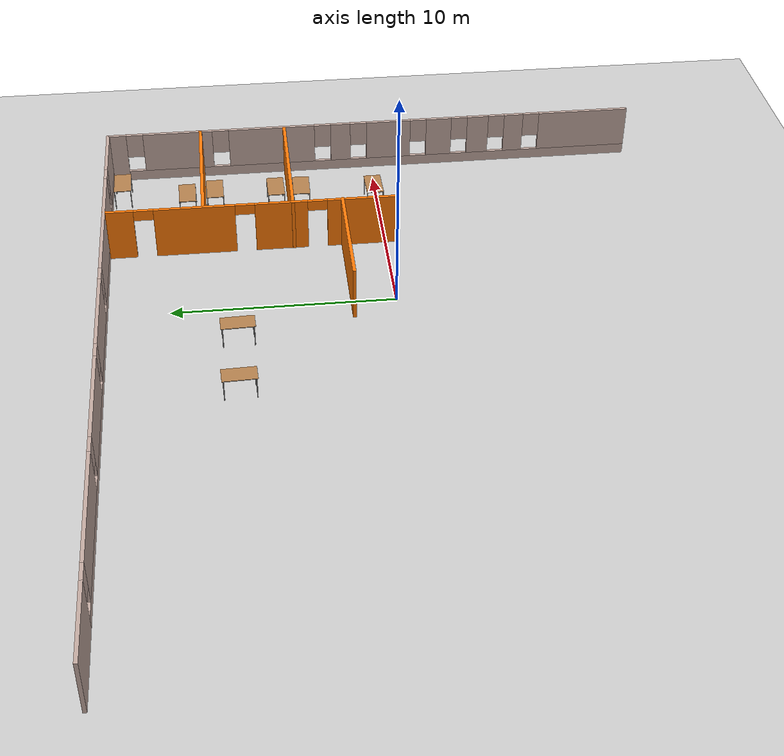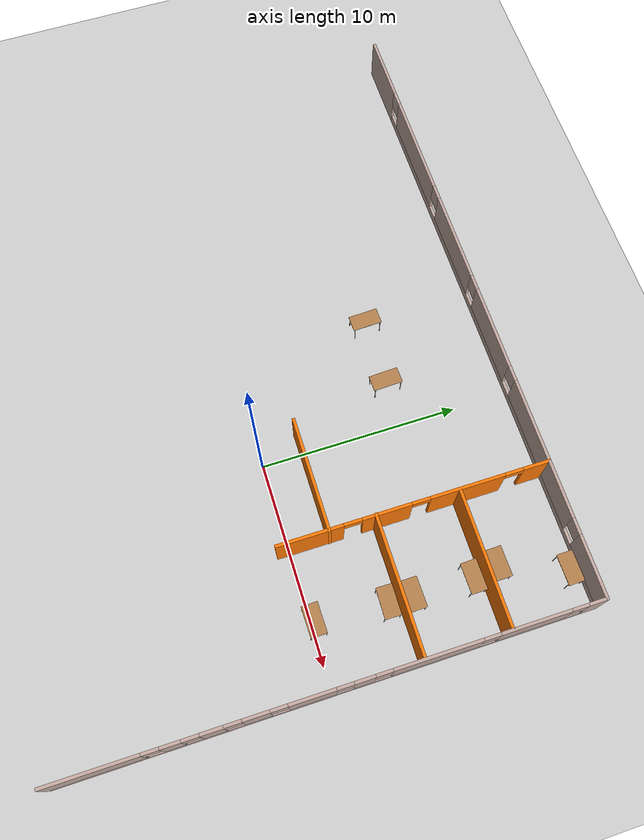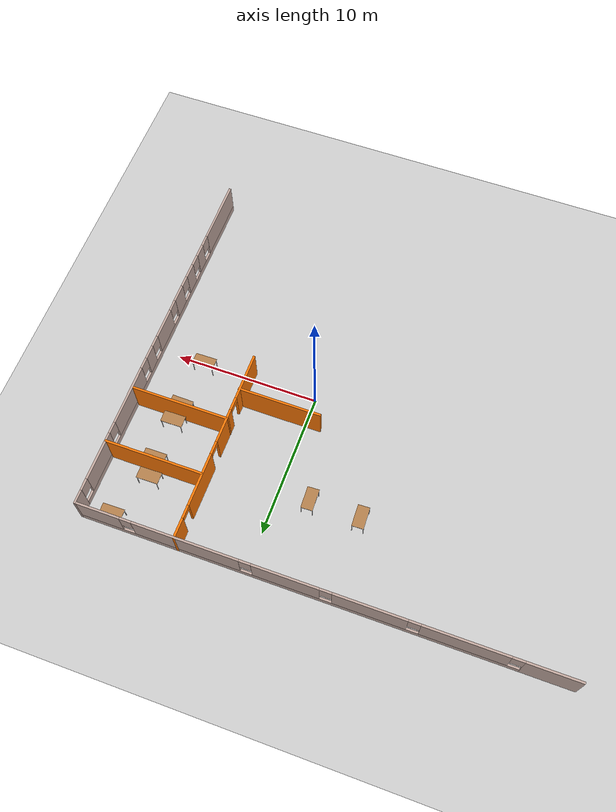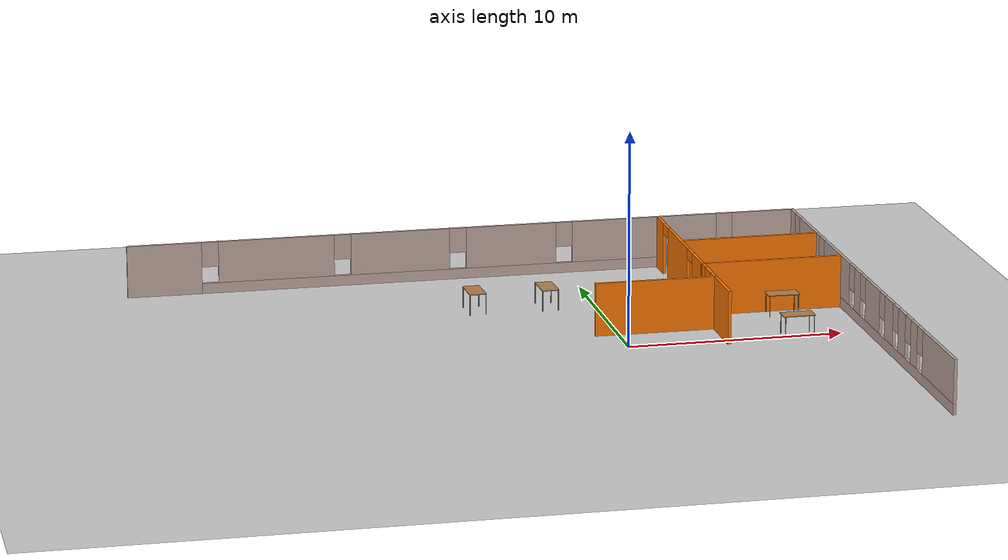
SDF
<sdf version="1.6">
 <world name="default">
  <model name="ground_plane">
   <static>1</static>
   <link name="link">
    <collision name="collision">
     <geometry><plane><normal>0 0 1</normal><size>100 100</size></plane></geometry>
     <surface><friction><ode><mu>100</mu><mu2>50</mu2></ode></friction></surface>
    </collision>
    <visual name="visual">
     <cast_shadows>0</cast_shadows>
     <geometry><plane><normal>0 0 1</normal><size>100 100</size></plane></geometry>
     <material>
      <script><uri>file://media/materials/scripts/gazebo.material</uri><name>Gazebo/Grey</name></script>
     </material>
    </visual>
   </link>
  </model>
  <model name="Building">
   <pose>-10.6691 -0.0294 0 0 -0 0</pose>
   <link name="Wall_158">
    <pose>5.73934 12.8407 0 0 -0 0</pose>
    <visual name="Wall_158_Visual_0">
     <pose>-14.4808 0 1.25 0 -0 0</pose>
     <geometry><box><size>3.53833 0.15 2.5</size></box></geometry>
     <material>
      <script><uri>file://media/materials/scripts/gazebo.material</uri><name>Gazebo/Grey</name></script>
      <ambient>0.760784 0.662745 0.627451 1</ambient>
     </material>
     <meta><layer>0</layer></meta>
    </visual>
    <collision name="Wall_158_Collision_0">
     <geometry><box><size>3.53833 0.15 2.5</size></box></geometry>
     <pose>-14.4808 0 1.25 0 -0 0</pose>
    </collision>
    <visual name="Wall_158_Visual_1">
     <pose>1.76917 0 0.25 0 -0 0</pose>
     <geometry><box><size>28.9617 0.15 0.5</size></box></geometry>
     <material>
      <script><uri>file://media/materials/scripts/gazebo.material</uri><name>Gazebo/Grey</name></script>
      <ambient>0.760784 0.662745 0.627451 1</ambient>
     </material>
     <meta><layer>0</layer></meta>
    </visual>
    <collision name="Wall_158_Collision_1">
     <geometry><box><size>28.9617 0.15 0.5</size></box></geometry>
     <pose>1.76917 0 0.25 0 -0 0</pose>
    </collision>
    <visual name="Wall_158_Visual_2">
     <pose>-9.14295 0 1.5 0 -0 0</pose>
     <geometry><box><size>5.53743 0.15 2</size></box></geometry>
     <material>
      <script><uri>file://media/materials/scripts/gazebo.material</uri><name>Gazebo/Grey</name></script>
      <ambient>0.760784 0.662745 0.627451 1</ambient>
     </material>
     <meta><layer>0</layer></meta>
    </visual>
    <collision name="Wall_158_Collision_2">
     <geometry><box><size>5.53743 0.15 2</size></box></geometry>
     <pose>-9.14295 0 1.5 0 -0 0</pose>
    </collision>
    <visual name="Wall_158_Visual_3">
     <pose>-3.18054 0 1.5 0 -0 0</pose>
     <geometry><box><size>4.7874 0.15 2</size></box></geometry>
     <material>
      <script><uri>file://media/materials/scripts/gazebo.material</uri><name>Gazebo/Grey</name></script>
      <ambient>0.760784 0.662745 0.627451 1</ambient>
     </material>
     <meta><layer>0</layer></meta>
    </visual>
    <collision name="Wall_158_Collision_3">
     <geometry><box><size>4.7874 0.15 2</size></box></geometry>
     <pose>-3.18054 0 1.5 0 -0 0</pose>
    </collision>
    <visual name="Wall_158_Visual_4">
     <pose>2.2199 0 1.5 0 -0 0</pose>
     <geometry><box><size>4.41347 0.15 2</size></box></geometry>
     <material>
      <script><uri>file://media/materials/scripts/gazebo.material</uri><name>Gazebo/Grey</name></script>
      <ambient>0.760784 0.662745 0.627451 1</ambient>
     </material>
     <meta><layer>0</layer></meta>
    </visual>
    <collision name="Wall_158_Collision_4">
     <geometry><box><size>4.41347 0.15 2</size></box></geometry>
     <pose>2.2199 0 1.5 0 -0 0</pose>
    </collision>
    <visual name="Wall_158_Visual_5">
     <pose>8.79242 0 1.5 0 -0 0</pose>
     <geometry><box><size>7.13158 0.15 2</size></box></geometry>
     <material>
      <script><uri>file://media/materials/scripts/gazebo.material</uri><name>Gazebo/Grey</name></script>
      <ambient>0.760784 0.662745 0.627451 1</ambient>
     </material>
     <meta><layer>0</layer></meta>
    </visual>
    <collision name="Wall_158_Collision_5">
     <geometry><box><size>7.13158 0.15 2</size></box></geometry>
     <pose>8.79242 0 1.5 0 -0 0</pose>
    </collision>
    <visual name="Wall_158_Visual_6">
     <pose>14.7041 0 1.5 0 -0 0</pose>
     <geometry><box><size>3.09179 0.15 2</size></box></geometry>
     <material>
      <script><uri>file://media/materials/scripts/gazebo.material</uri><name>Gazebo/Grey</name></script>
      <ambient>0.760784 0.662745 0.627451 1</ambient>
     </material>
     <meta><layer>0</layer></meta>
    </visual>
    <collision name="Wall_158_Collision_6">
     <geometry><box><size>3.09179 0.15 2</size></box></geometry>
     <pose>14.7041 0 1.5 0 -0 0</pose>
    </collision>
    <visual name="Wall_158_Visual_7">
     <pose>-12.3117 0 1.9 0 -0 0</pose>
     <geometry><box><size>0.8 0.15 1.2</size></box></geometry>
     <material>
      <script><uri>file://media/materials/scripts/gazebo.material</uri><name>Gazebo/Grey</name></script>
      <ambient>0.760784 0.662745 0.627451 1</ambient>
     </material>
     <meta><layer>0</layer></meta>
    </visual>
    <collision name="Wall_158_Collision_7">
     <geometry><box><size>0.8 0.15 1.2</size></box></geometry>
     <pose>-12.3117 0 1.9 0 -0 0</pose>
    </collision>
    <visual name="Wall_158_Visual_8">
     <pose>-5.97424 0 1.9 0 -0 0</pose>
     <geometry><box><size>0.8 0.15 1.2</size></box></geometry>
     <material>
      <script><uri>file://media/materials/scripts/gazebo.material</uri><name>Gazebo/Grey</name></script>
      <ambient>0.760784 0.662745 0.627451 1</ambient>
     </material>
     <meta><layer>0</layer></meta>
    </visual>
    <collision name="Wall_158_Collision_8">
     <geometry><box><size>0.8 0.15 1.2</size></box></geometry>
     <pose>-5.97424 0 1.9 0 -0 0</pose>
    </collision>
    <visual name="Wall_158_Visual_9">
     <pose>-0.386836 0 1.9 0 -0 0</pose>
     <geometry><box><size>0.8 0.15 1.2</size></box></geometry>
     <material>
      <script><uri>file://media/materials/scripts/gazebo.material</uri><name>Gazebo/Grey</name></script>
      <ambient>0.760784 0.662745 0.627451 1</ambient>
     </material>
     <meta><layer>0</layer></meta>
    </visual>
    <collision name="Wall_158_Collision_9">
     <geometry><box><size>0.8 0.15 1.2</size></box></geometry>
     <pose>-0.386836 0 1.9 0 -0 0</pose>
    </collision>
    <visual name="Wall_158_Visual_10">
     <pose>4.82663 0 1.9 0 -0 0</pose>
     <geometry><box><size>0.8 0.15 1.2</size></box></geometry>
     <material>
      <script><uri>file://media/materials/scripts/gazebo.material</uri><name>Gazebo/Grey</name></script>
      <ambient>0.760784 0.662745 0.627451 1</ambient>
     </material>
     <meta><layer>0</layer></meta>
    </visual>
    <collision name="Wall_158_Collision_10">
     <geometry><box><size>0.8 0.15 1.2</size></box></geometry>
     <pose>4.82663 0 1.9 0 -0 0</pose>
    </collision>
    <visual name="Wall_158_Visual_11">
     <pose>12.7582 0 1.9 0 -0 0</pose>
     <geometry><box><size>0.8 0.15 1.2</size></box></geometry>
     <material>
      <script><uri>file://media/materials/scripts/gazebo.material</uri><name>Gazebo/Grey</name></script>
      <ambient>0.760784 0.662745 0.627451 1</ambient>
     </material>
     <meta><layer>0</layer></meta>
    </visual>
    <collision name="Wall_158_Collision_11">
     <geometry><box><size>0.8 0.15 1.2</size></box></geometry>
     <pose>12.7582 0 1.9 0 -0 0</pose>
    </collision>
   </link>
   <link name="Wall_160">
    <pose>21.925 0.027541 0 0 0 -1.56997</pose>
    <visual name="Wall_160_Visual_0">
     <pose>-12.4183 0 1.25 0 -0 0</pose>
     <geometry><box><size>0.939904 0.15 2.5</size></box></geometry>
     <material>
      <script><uri>file://media/materials/scripts/gazebo.material</uri><name>Gazebo/Grey</name></script>
      <ambient>0.760784 0.662745 0.627451 1</ambient>
     </material>
     <meta><layer>0</layer></meta>
    </visual>
    <collision name="Wall_160_Collision_0">
     <geometry><box><size>0.939904 0.15 2.5</size></box></geometry>
     <pose>-12.4183 0 1.25 0 -0 0</pose>
    </collision>
    <visual name="Wall_160_Visual_1">
     <pose>0.469952 0 0.25 0 -0 0</pose>
     <geometry><box><size>24.8365 0.15 0.5</size></box></geometry>
     <material>
      <script><uri>file://media/materials/scripts/gazebo.material</uri><name>Gazebo/Grey</name></script>
      <ambient>0.760784 0.662745 0.627451 1</ambient>
     </material>
     <meta><layer>0</layer></meta>
    </visual>
    <collision name="Wall_160_Collision_1">
     <geometry><box><size>24.8365 0.15 0.5</size></box></geometry>
     <pose>0.469952 0 0.25 0 -0 0</pose>
    </collision>
    <visual name="Wall_160_Visual_2">
     <pose>-9.46541 0 1.5 0 -0 0</pose>
     <geometry><box><size>3.36577 0.15 2</size></box></geometry>
     <material>
      <script><uri>file://media/materials/scripts/gazebo.material</uri><name>Gazebo/Grey</name></script>
      <ambient>0.760784 0.662745 0.627451 1</ambient>
     </material>
     <meta><layer>0</layer></meta>
    </visual>
    <collision name="Wall_160_Collision_2">
     <geometry><box><size>3.36577 0.15 2</size></box></geometry>
     <pose>-9.46541 0 1.5 0 -0 0</pose>
    </collision>
    <visual name="Wall_160_Visual_3">
     <pose>-4.87743 0 1.5 0 -0 0</pose>
     <geometry><box><size>4.21019 0.15 2</size></box></geometry>
     <material>
      <script><uri>file://media/materials/scripts/gazebo.material</uri><name>Gazebo/Grey</name></script>
      <ambient>0.760784 0.662745 0.627451 1</ambient>
     </material>
     <meta><layer>0</layer></meta>
    </visual>
    <collision name="Wall_160_Collision_3">
     <geometry><box><size>4.21019 0.15 2</size></box></geometry>
     <pose>-4.87743 0 1.5 0 -0 0</pose>
    </collision>
    <visual name="Wall_160_Visual_4">
     <pose>-1.48571 0 1.5 0 -0 0</pose>
     <geometry><box><size>0.973268 0.15 2</size></box></geometry>
     <material>
      <script><uri>file://media/materials/scripts/gazebo.material</uri><name>Gazebo/Grey</name></script>
      <ambient>0.760784 0.662745 0.627451 1</ambient>
     </material>
     <meta><layer>0</layer></meta>
    </visual>
    <collision name="Wall_160_Collision_4">
     <geometry><box><size>0.973268 0.15 2</size></box></geometry>
     <pose>-1.48571 0 1.5 0 -0 0</pose>
    </collision>
    <visual name="Wall_160_Visual_5">
     <pose>0.892725 0 1.5 0 -0 0</pose>
     <geometry><box><size>2.18359 0.15 2</size></box></geometry>
     <material>
      <script><uri>file://media/materials/scripts/gazebo.material</uri><name>Gazebo/Grey</name></script>
      <ambient>0.760784 0.662745 0.627451 1</ambient>
     </material>
     <meta><layer>0</layer></meta>
    </visual>
    <collision name="Wall_160_Collision_5">
     <geometry><box><size>2.18359 0.15 2</size></box></geometry>
     <pose>0.892725 0 1.5 0 -0 0</pose>
    </collision>
    <visual name="Wall_160_Visual_6">
     <pose>3.41189 0 1.5 0 -0 0</pose>
     <geometry><box><size>1.25474 0.15 2</size></box></geometry>
     <material>
      <script><uri>file://media/materials/scripts/gazebo.material</uri><name>Gazebo/Grey</name></script>
      <ambient>0.760784 0.662745 0.627451 1</ambient>
     </material>
     <meta><layer>0</layer></meta>
    </visual>
    <collision name="Wall_160_Collision_6">
     <geometry><box><size>1.25474 0.15 2</size></box></geometry>
     <pose>3.41189 0 1.5 0 -0 0</pose>
    </collision>
    <visual name="Wall_160_Visual_7">
     <pose>5.36812 0 1.5 0 -0 0</pose>
     <geometry><box><size>1.05771 0.15 2</size></box></geometry>
     <material>
      <script><uri>file://media/materials/scripts/gazebo.material</uri><name>Gazebo/Grey</name></script>
      <ambient>0.760784 0.662745 0.627451 1</ambient>
     </material>
     <meta><layer>0</layer></meta>
    </visual>
    <collision name="Wall_160_Collision_7">
     <geometry><box><size>1.05771 0.15 2</size></box></geometry>
     <pose>5.36812 0 1.5 0 -0 0</pose>
    </collision>
    <visual name="Wall_160_Visual_8">
     <pose>7.16955 0 1.5 0 -0 0</pose>
     <geometry><box><size>0.945153 0.15 2</size></box></geometry>
     <material>
      <script><uri>file://media/materials/scripts/gazebo.material</uri><name>Gazebo/Grey</name></script>
      <ambient>0.760784 0.662745 0.627451 1</ambient>
     </material>
     <meta><layer>0</layer></meta>
    </visual>
    <collision name="Wall_160_Collision_8">
     <geometry><box><size>0.945153 0.15 2</size></box></geometry>
     <pose>7.16955 0 1.5 0 -0 0</pose>
    </collision>
    <visual name="Wall_160_Visual_9">
     <pose>10.6652 0 1.5 0 -0 0</pose>
     <geometry><box><size>4.44608 0.15 2</size></box></geometry>
     <material>
      <script><uri>file://media/materials/scripts/gazebo.material</uri><name>Gazebo/Grey</name></script>
      <ambient>0.760784 0.662745 0.627451 1</ambient>
     </material>
     <meta><layer>0</layer></meta>
    </visual>
    <collision name="Wall_160_Collision_9">
     <geometry><box><size>4.44608 0.15 2</size></box></geometry>
     <pose>10.6652 0 1.5 0 -0 0</pose>
    </collision>
    <visual name="Wall_160_Visual_10">
     <pose>-11.5483 0 1.9 0 -0 0</pose>
     <geometry><box><size>0.8 0.15 1.2</size></box></geometry>
     <material>
      <script><uri>file://media/materials/scripts/gazebo.material</uri><name>Gazebo/Grey</name></script>
      <ambient>0.760784 0.662745 0.627451 1</ambient>
     </material>
     <meta><layer>0</layer></meta>
    </visual>
    <collision name="Wall_160_Collision_10">
     <geometry><box><size>0.8 0.15 1.2</size></box></geometry>
     <pose>-11.5483 0 1.9 0 -0 0</pose>
    </collision>
    <visual name="Wall_160_Visual_11">
     <pose>-7.38253 0 1.9 0 -0 0</pose>
     <geometry><box><size>0.8 0.15 1.2</size></box></geometry>
     <material>
      <script><uri>file://media/materials/scripts/gazebo.material</uri><name>Gazebo/Grey</name></script>
      <ambient>0.760784 0.662745 0.627451 1</ambient>
     </material>
     <meta><layer>0</layer></meta>
    </visual>
    <collision name="Wall_160_Collision_11">
     <geometry><box><size>0.8 0.15 1.2</size></box></geometry>
     <pose>-7.38253 0 1.9 0 -0 0</pose>
    </collision>
    <visual name="Wall_160_Visual_12">
     <pose>-2.37234 0 1.9 0 -0 0</pose>
     <geometry><box><size>0.8 0.15 1.2</size></box></geometry>
     <material>
      <script><uri>file://media/materials/scripts/gazebo.material</uri><name>Gazebo/Grey</name></script>
      <ambient>0.760784 0.662745 0.627451 1</ambient>
     </material>
     <meta><layer>0</layer></meta>
    </visual>
    <collision name="Wall_160_Collision_12">
     <geometry><box><size>0.8 0.15 1.2</size></box></geometry>
     <pose>-2.37234 0 1.9 0 -0 0</pose>
    </collision>
    <visual name="Wall_160_Visual_13">
     <pose>-0.599072 0 1.9 0 -0 0</pose>
     <geometry><box><size>0.8 0.15 1.2</size></box></geometry>
     <material>
      <script><uri>file://media/materials/scripts/gazebo.material</uri><name>Gazebo/Grey</name></script>
      <ambient>0.760784 0.662745 0.627451 1</ambient>
     </material>
     <meta><layer>0</layer></meta>
    </visual>
    <collision name="Wall_160_Collision_13">
     <geometry><box><size>0.8 0.15 1.2</size></box></geometry>
     <pose>-0.599072 0 1.9 0 -0 0</pose>
    </collision>
    <visual name="Wall_160_Visual_14">
     <pose>2.38452 0 1.9 0 -0 0</pose>
     <geometry><box><size>0.8 0.15 1.2</size></box></geometry>
     <material>
      <script><uri>file://media/materials/scripts/gazebo.material</uri><name>Gazebo/Grey</name></script>
      <ambient>0.760784 0.662745 0.627451 1</ambient>
     </material>
     <meta><layer>0</layer></meta>
    </visual>
    <collision name="Wall_160_Collision_14">
     <geometry><box><size>0.8 0.15 1.2</size></box></geometry>
     <pose>2.38452 0 1.9 0 -0 0</pose>
    </collision>
    <visual name="Wall_160_Visual_15">
     <pose>4.43926 0 1.9 0 -0 0</pose>
     <geometry><box><size>0.8 0.15 1.2</size></box></geometry>
     <material>
      <script><uri>file://media/materials/scripts/gazebo.material</uri><name>Gazebo/Grey</name></script>
      <ambient>0.760784 0.662745 0.627451 1</ambient>
     </material>
     <meta><layer>0</layer></meta>
    </visual>
    <collision name="Wall_160_Collision_15">
     <geometry><box><size>0.8 0.15 1.2</size></box></geometry>
     <pose>4.43926 0 1.9 0 -0 0</pose>
    </collision>
    <visual name="Wall_160_Visual_16">
     <pose>6.29697 0 1.9 0 -0 0</pose>
     <geometry><box><size>0.8 0.15 1.2</size></box></geometry>
     <material>
      <script><uri>file://media/materials/scripts/gazebo.material</uri><name>Gazebo/Grey</name></script>
      <ambient>0.760784 0.662745 0.627451 1</ambient>
     </material>
     <meta><layer>0</layer></meta>
    </visual>
    <collision name="Wall_160_Collision_16">
     <geometry><box><size>0.8 0.15 1.2</size></box></geometry>
     <pose>6.29697 0 1.9 0 -0 0</pose>
    </collision>
    <visual name="Wall_160_Visual_17">
     <pose>8.04212 0 1.9 0 -0 0</pose>
     <geometry><box><size>0.8 0.15 1.2</size></box></geometry>
     <material>
      <script><uri>file://media/materials/scripts/gazebo.material</uri><name>Gazebo/Grey</name></script>
      <ambient>0.760784 0.662745 0.627451 1</ambient>
     </material>
     <meta><layer>0</layer></meta>
    </visual>
    <collision name="Wall_160_Collision_17">
     <geometry><box><size>0.8 0.15 1.2</size></box></geometry>
     <pose>8.04212 0 1.9 0 -0 0</pose>
    </collision>
   </link>
   <link name="Wall_168">
    <pose>15.2204 6.16765 0 0 0 -1.5708</pose>
    <visual name="Wall_168_Visual_0">
     <pose>-6.05122 0 1.25 0 -0 0</pose>
     <geometry><box><size>1.39756 0.15 2.5</size></box></geometry>
     <material>
      <script><uri>file://media/materials/scripts/gazebo.material</uri><name>Gazebo/Grey</name></script>
      <ambient>0.996078 0.47451 0.0196078 1</ambient>
     </material>
     <meta><layer>0</layer></meta>
    </visual>
    <collision name="Wall_168_Collision_0">
     <geometry><box><size>1.39756 0.15 2.5</size></box></geometry>
     <pose>-6.05122 0 1.25 0 -0 0</pose>
    </collision>
    <visual name="Wall_168_Visual_1">
     <pose>-2.60621 0 1.25 0 -0 0</pose>
     <geometry><box><size>3.69245 0.15 2.5</size></box></geometry>
     <material>
      <script><uri>file://media/materials/scripts/gazebo.material</uri><name>Gazebo/Grey</name></script>
      <ambient>0.996078 0.47451 0.0196078 1</ambient>
     </material>
     <meta><layer>0</layer></meta>
    </visual>
    <collision name="Wall_168_Collision_1">
     <geometry><box><size>3.69245 0.15 2.5</size></box></geometry>
     <pose>-2.60621 0 1.25 0 -0 0</pose>
    </collision>
    <visual name="Wall_168_Visual_2">
     <pose>1.3484 0 1.25 0 -0 0</pose>
     <geometry><box><size>2.41677 0.15 2.5</size></box></geometry>
     <material>
      <script><uri>file://media/materials/scripts/gazebo.material</uri><name>Gazebo/Grey</name></script>
      <ambient>0.996078 0.47451 0.0196078 1</ambient>
     </material>
     <meta><layer>0</layer></meta>
    </visual>
    <collision name="Wall_168_Collision_2">
     <geometry><box><size>2.41677 0.15 2.5</size></box></geometry>
     <pose>1.3484 0 1.25 0 -0 0</pose>
    </collision>
    <visual name="Wall_168_Visual_3">
     <pose>5.10339 0 1.25 0 -0 0</pose>
     <geometry><box><size>3.29322 0.15 2.5</size></box></geometry>
     <material>
      <script><uri>file://media/materials/scripts/gazebo.material</uri><name>Gazebo/Grey</name></script>
      <ambient>0.996078 0.47451 0.0196078 1</ambient>
     </material>
     <meta><layer>0</layer></meta>
    </visual>
    <collision name="Wall_168_Collision_3">
     <geometry><box><size>3.29322 0.15 2.5</size></box></geometry>
     <pose>5.10339 0 1.25 0 -0 0</pose>
    </collision>
    <visual name="Wall_168_Visual_4">
     <pose>-4.90244 0 2.25 0 -0 0</pose>
     <geometry><box><size>0.9 0.15 0.5</size></box></geometry>
     <material>
      <script><uri>file://media/materials/scripts/gazebo.material</uri><name>Gazebo/Grey</name></script>
      <ambient>0.996078 0.47451 0.0196078 1</ambient>
     </material>
     <meta><layer>0</layer></meta>
    </visual>
    <collision name="Wall_168_Collision_4">
     <geometry><box><size>0.9 0.15 0.5</size></box></geometry>
     <pose>-4.90244 0 2.25 0 -0 0</pose>
    </collision>
    <visual name="Wall_168_Visual_5">
     <pose>-0.309989 0 2.25 0 -0 0</pose>
     <geometry><box><size>0.9 0.15 0.5</size></box></geometry>
     <material>
      <script><uri>file://media/materials/scripts/gazebo.material</uri><name>Gazebo/Grey</name></script>
      <ambient>0.996078 0.47451 0.0196078 1</ambient>
     </material>
     <meta><layer>0</layer></meta>
    </visual>
    <collision name="Wall_168_Collision_5">
     <geometry><box><size>0.9 0.15 0.5</size></box></geometry>
     <pose>-0.309989 0 2.25 0 -0 0</pose>
    </collision>
    <visual name="Wall_168_Visual_6">
     <pose>3.00678 0 2.25 0 -0 0</pose>
     <geometry><box><size>0.9 0.15 0.5</size></box></geometry>
     <material>
      <script><uri>file://media/materials/scripts/gazebo.material</uri><name>Gazebo/Grey</name></script>
      <ambient>0.996078 0.47451 0.0196078 1</ambient>
     </material>
     <meta><layer>0</layer></meta>
    </visual>
    <collision name="Wall_168_Collision_6">
     <geometry><box><size>0.9 0.15 0.5</size></box></geometry>
     <pose>3.00678 0 2.25 0 -0 0</pose>
    </collision>
   </link>
   <link name="Wall_171">
    <collision name="Wall_171_Collision">
     <geometry><box><size>6.75 0.15 2.5</size></box></geometry>
     <pose>0 0 1.25 0 -0 0</pose>
    </collision>
    <visual name="Wall_171_Visual">
     <pose>0 0 1.25 0 -0 0</pose>
     <geometry><box><size>6.75 0.15 2.5</size></box></geometry>
     <material>
      <script><uri>file://media/materials/scripts/gazebo.material</uri><name>Gazebo/Grey</name></script>
      <ambient>0.996078 0.47451 0.0196078 1</ambient>
     </material>
     <meta><layer>0</layer></meta>
    </visual>
    <pose>18.5682 8.3698 0 0 -0 0</pose>
   </link>
   <link name="Wall_173">
    <collision name="Wall_173_Collision">
     <geometry><box><size>6.75 0.15 2.5</size></box></geometry>
     <pose>0 0 1.25 0 -0 0</pose>
    </collision>
    <visual name="Wall_173_Visual">
     <pose>0 0 1.25 0 -0 0</pose>
     <geometry><box><size>6.75 0.15 2.5</size></box></geometry>
     <material>
      <script><uri>file://media/materials/scripts/gazebo.material</uri><name>Gazebo/Grey</name></script>
      <ambient>0.996078 0.47451 0.0196078 1</ambient>
     </material>
     <meta><layer>0</layer></meta>
    </visual>
    <pose>18.4965 4.27965 0 0 -0 0</pose>
   </link>
   <link name="Wall_176">
    <collision name="Wall_176_Collision">
     <geometry><box><size>5.75 0.15 2.5</size></box></geometry>
     <pose>0 0 1.25 0 -0 0</pose>
    </collision>
    <visual name="Wall_176_Visual">
     <pose>0 0 1.25 0 -0 0</pose>
     <geometry><box><size>5.75 0.15 2.5</size></box></geometry>
     <material>
      <script><uri>file://media/materials/scripts/gazebo.material</uri><name>Gazebo/Grey</name></script>
      <ambient>0.996078 0.47451 0.0196078 1</ambient>
     </material>
     <meta><layer>0</layer></meta>
    </visual>
    <pose>12.4443 2.00735 0 0 -0 3.14159</pose>
   </link>
   <static>1</static>
  </model>
  <model name="table_1_clone_clone_clone_5">
   <static>1</static>
   <link name="link">
    <collision name="surface">
     <pose>0 0 1 0 -0 0</pose>
     <geometry><box><size>1.5 0.8 0.03</size></box></geometry>
     <surface><friction><ode><mu>0.6</mu><mu2>0.6</mu2></ode></friction></surface>
    </collision>
    <visual name="visual1">
     <pose>0 0 1 0 -0 0</pose>
     <geometry><box><size>1.5 0.8 0.03</size></box></geometry>
     <material>
      <script><uri>file://media/materials/scripts/gazebo.material</uri><name>Gazebo/Wood</name></script>
     </material>
    </visual>
    <collision name="front_left_leg">
     <pose>0.68 0.38 0.5 0 -0 0</pose>
     <geometry><cylinder><radius>0.02</radius><length>1</length></cylinder></geometry>
    </collision>
    <visual name="front_left_leg">
     <pose>0.68 0.38 0.5 0 -0 0</pose>
     <geometry><cylinder><radius>0.02</radius><length>1</length></cylinder></geometry>
     <material>
      <script><uri>file://media/materials/scripts/gazebo.material</uri><name>Gazebo/Grey</name></script>
     </material>
    </visual>
    <collision name="front_right_leg">
     <pose>0.68 -0.38 0.5 0 -0 0</pose>
     <geometry><cylinder><radius>0.02</radius><length>1</length></cylinder></geometry>
    </collision>
    <visual name="front_right_leg">
     <pose>0.68 -0.38 0.5 0 -0 0</pose>
     <geometry><cylinder><radius>0.02</radius><length>1</length></cylinder></geometry>
     <material>
      <script><uri>file://media/materials/scripts/gazebo.material</uri><name>Gazebo/Grey</name></script>
     </material>
    </visual>
    <collision name="back_right_leg">
     <pose>-0.68 -0.38 0.5 0 -0 0</pose>
     <geometry><cylinder><radius>0.02</radius><length>1</length></cylinder></geometry>
    </collision>
    <visual name="back_right_leg">
     <pose>-0.68 -0.38 0.5 0 -0 0</pose>
     <geometry><cylinder><radius>0.02</radius><length>1</length></cylinder></geometry>
     <material>
      <script><uri>file://media/materials/scripts/gazebo.material</uri><name>Gazebo/Grey</name></script>
     </material>
    </visual>
    <collision name="back_left_leg">
     <pose>-0.68 0.38 0.5 0 -0 0</pose>
     <geometry><cylinder><radius>0.02</radius><length>1</length></cylinder></geometry>
    </collision>
    <visual name="back_left_leg">
     <pose>-0.68 0.38 0.5 0 -0 0</pose>
     <geometry><cylinder><radius>0.02</radius><length>1</length></cylinder></geometry>
     <material>
      <script><uri>file://media/materials/scripts/gazebo.material</uri><name>Gazebo/Grey</name></script>
     </material>
    </visual>
   </link>
   <pose>7.97544 0.177681 0 0 -0 0.014632</pose>
  </model>
  <model name="table_1_clone_clone_clone_6">
   <static>1</static>
   <link name="link">
    <collision name="surface">
     <pose>0 0 1 0 -0 0</pose>
     <geometry><box><size>1.5 0.8 0.03</size></box></geometry>
     <surface><friction><ode><mu>0.6</mu><mu2>0.6</mu2></ode></friction></surface>
    </collision>
    <visual name="visual1">
     <pose>0 0 1 0 -0 0</pose>
     <geometry><box><size>1.5 0.8 0.03</size></box></geometry>
     <material>
      <script><uri>file://media/materials/scripts/gazebo.material</uri><name>Gazebo/Wood</name></script>
     </material>
    </visual>
    <collision name="front_left_leg">
     <pose>0.68 0.38 0.5 0 -0 0</pose>
     <geometry><cylinder><radius>0.02</radius><length>1</length></cylinder></geometry>
    </collision>
    <visual name="front_left_leg">
     <pose>0.68 0.38 0.5 0 -0 0</pose>
     <geometry><cylinder><radius>0.02</radius><length>1</length></cylinder></geometry>
     <material>
      <script><uri>file://media/materials/scripts/gazebo.material</uri><name>Gazebo/Grey</name></script>
     </material>
    </visual>
    <collision name="front_right_leg">
     <pose>0.68 -0.38 0.5 0 -0 0</pose>
     <geometry><cylinder><radius>0.02</radius><length>1</length></cylinder></geometry>
    </collision>
    <visual name="front_right_leg">
     <pose>0.68 -0.38 0.5 0 -0 0</pose>
     <geometry><cylinder><radius>0.02</radius><length>1</length></cylinder></geometry>
     <material>
      <script><uri>file://media/materials/scripts/gazebo.material</uri><name>Gazebo/Grey</name></script>
     </material>
    </visual>
    <collision name="back_right_leg">
     <pose>-0.68 -0.38 0.5 0 -0 0</pose>
     <geometry><cylinder><radius>0.02</radius><length>1</length></cylinder></geometry>
    </collision>
    <visual name="back_right_leg">
     <pose>-0.68 -0.38 0.5 0 -0 0</pose>
     <geometry><cylinder><radius>0.02</radius><length>1</length></cylinder></geometry>
     <material>
      <script><uri>file://media/materials/scripts/gazebo.material</uri><name>Gazebo/Grey</name></script>
     </material>
    </visual>
    <collision name="back_left_leg">
     <pose>-0.68 0.38 0.5 0 -0 0</pose>
     <geometry><cylinder><radius>0.02</radius><length>1</length></cylinder></geometry>
    </collision>
    <visual name="back_left_leg">
     <pose>-0.68 0.38 0.5 0 -0 0</pose>
     <geometry><cylinder><radius>0.02</radius><length>1</length></cylinder></geometry>
     <material>
      <script><uri>file://media/materials/scripts/gazebo.material</uri><name>Gazebo/Grey</name></script>
     </material>
    </visual>
   </link>
   <pose>8.21726 3.66619 0 0 -0 3.12225</pose>
  </model>
  <model name="table_1_clone_clone_clone_5_clone">
   <static>1</static>
   <link name="link">
    <collision name="surface">
     <pose>0 0 1 0 -0 0</pose>
     <geometry><box><size>1.5 0.8 0.03</size></box></geometry>
     <surface><friction><ode><mu>0.6</mu><mu2>0.6</mu2></ode></friction></surface>
    </collision>
    <visual name="visual1">
     <pose>0 0 1 0 -0 0</pose>
     <geometry><box><size>1.5 0.8 0.03</size></box></geometry>
     <material>
      <script><uri>file://media/materials/scripts/gazebo.material</uri><name>Gazebo/Wood</name></script>
     </material>
    </visual>
    <collision name="front_left_leg">
     <pose>0.68 0.38 0.5 0 -0 0</pose>
     <geometry><cylinder><radius>0.02</radius><length>1</length></cylinder></geometry>
    </collision>
    <visual name="front_left_leg">
     <pose>0.68 0.38 0.5 0 -0 0</pose>
     <geometry><cylinder><radius>0.02</radius><length>1</length></cylinder></geometry>
     <material>
      <script><uri>file://media/materials/scripts/gazebo.material</uri><name>Gazebo/Grey</name></script>
     </material>
    </visual>
    <collision name="front_right_leg">
     <pose>0.68 -0.38 0.5 0 -0 0</pose>
     <geometry><cylinder><radius>0.02</radius><length>1</length></cylinder></geometry>
    </collision>
    <visual name="front_right_leg">
     <pose>0.68 -0.38 0.5 0 -0 0</pose>
     <geometry><cylinder><radius>0.02</radius><length>1</length></cylinder></geometry>
     <material>
      <script><uri>file://media/materials/scripts/gazebo.material</uri><name>Gazebo/Grey</name></script>
     </material>
    </visual>
    <collision name="back_right_leg">
     <pose>-0.68 -0.38 0.5 0 -0 0</pose>
     <geometry><cylinder><radius>0.02</radius><length>1</length></cylinder></geometry>
    </collision>
    <visual name="back_right_leg">
     <pose>-0.68 -0.38 0.5 0 -0 0</pose>
     <geometry><cylinder><radius>0.02</radius><length>1</length></cylinder></geometry>
     <material>
      <script><uri>file://media/materials/scripts/gazebo.material</uri><name>Gazebo/Grey</name></script>
     </material>
    </visual>
    <collision name="back_left_leg">
     <pose>-0.68 0.38 0.5 0 -0 0</pose>
     <geometry><cylinder><radius>0.02</radius><length>1</length></cylinder></geometry>
    </collision>
    <visual name="back_left_leg">
     <pose>-0.68 0.38 0.5 0 -0 0</pose>
     <geometry><cylinder><radius>0.02</radius><length>1</length></cylinder></geometry>
     <material>
      <script><uri>file://media/materials/scripts/gazebo.material</uri><name>Gazebo/Grey</name></script>
     </material>
    </visual>
   </link>
   <pose>8.25096 4.8873 0 0 -0 0.014632</pose>
  </model>
  <model name="table_1_clone_clone_clone_5_clone_0">
   <static>1</static>
   <link name="link">
    <collision name="surface">
     <pose>0 0 1 0 -0 0</pose>
     <geometry><box><size>1.5 0.8 0.03</size></box></geometry>
     <surface><friction><ode><mu>0.6</mu><mu2>0.6</mu2></ode></friction></surface>
    </collision>
    <visual name="visual1">
     <pose>0 0 1 0 -0 0</pose>
     <geometry><box><size>1.5 0.8 0.03</size></box></geometry>
     <material>
      <script><uri>file://media/materials/scripts/gazebo.material</uri><name>Gazebo/Wood</name></script>
     </material>
    </visual>
    <collision name="front_left_leg">
     <pose>0.68 0.38 0.5 0 -0 0</pose>
     <geometry><cylinder><radius>0.02</radius><length>1</length></cylinder></geometry>
    </collision>
    <visual name="front_left_leg">
     <pose>0.68 0.38 0.5 0 -0 0</pose>
     <geometry><cylinder><radius>0.02</radius><length>1</length></cylinder></geometry>
     <material>
      <script><uri>file://media/materials/scripts/gazebo.material</uri><name>Gazebo/Grey</name></script>
     </material>
    </visual>
    <collision name="front_right_leg">
     <pose>0.68 -0.38 0.5 0 -0 0</pose>
     <geometry><cylinder><radius>0.02</radius><length>1</length></cylinder></geometry>
    </collision>
    <visual name="front_right_leg">
     <pose>0.68 -0.38 0.5 0 -0 0</pose>
     <geometry><cylinder><radius>0.02</radius><length>1</length></cylinder></geometry>
     <material>
      <script><uri>file://media/materials/scripts/gazebo.material</uri><name>Gazebo/Grey</name></script>
     </material>
    </visual>
    <collision name="back_right_leg">
     <pose>-0.68 -0.38 0.5 0 -0 0</pose>
     <geometry><cylinder><radius>0.02</radius><length>1</length></cylinder></geometry>
    </collision>
    <visual name="back_right_leg">
     <pose>-0.68 -0.38 0.5 0 -0 0</pose>
     <geometry><cylinder><radius>0.02</radius><length>1</length></cylinder></geometry>
     <material>
      <script><uri>file://media/materials/scripts/gazebo.material</uri><name>Gazebo/Grey</name></script>
     </material>
    </visual>
    <collision name="back_left_leg">
     <pose>-0.68 0.38 0.5 0 -0 0</pose>
     <geometry><cylinder><radius>0.02</radius><length>1</length></cylinder></geometry>
    </collision>
    <visual name="back_left_leg">
     <pose>-0.68 0.38 0.5 0 -0 0</pose>
     <geometry><cylinder><radius>0.02</radius><length>1</length></cylinder></geometry>
     <material>
      <script><uri>file://media/materials/scripts/gazebo.material</uri><name>Gazebo/Grey</name></script>
     </material>
    </visual>
   </link>
   <pose>8.33352 7.79827 0 0 -0 0.014632</pose>
  </model>
  <model name="table_1_clone_clone_clone_5_clone_1">
   <static>1</static>
   <link name="link">
    <collision name="surface">
     <pose>0 0 1 0 -0 0</pose>
     <geometry><box><size>1.5 0.8 0.03</size></box></geometry>
     <surface><friction><ode><mu>0.6</mu><mu2>0.6</mu2></ode></friction></surface>
    </collision>
    <visual name="visual1">
     <pose>0 0 1 0 -0 0</pose>
     <geometry><box><size>1.5 0.8 0.03</size></box></geometry>
     <material>
      <script><uri>file://media/materials/scripts/gazebo.material</uri><name>Gazebo/Wood</name></script>
     </material>
    </visual>
    <collision name="front_left_leg">
     <pose>0.68 0.38 0.5 0 -0 0</pose>
     <geometry><cylinder><radius>0.02</radius><length>1</length></cylinder></geometry>
    </collision>
    <visual name="front_left_leg">
     <pose>0.68 0.38 0.5 0 -0 0</pose>
     <geometry><cylinder><radius>0.02</radius><length>1</length></cylinder></geometry>
     <material>
      <script><uri>file://media/materials/scripts/gazebo.material</uri><name>Gazebo/Grey</name></script>
     </material>
    </visual>
    <collision name="front_right_leg">
     <pose>0.68 -0.38 0.5 0 -0 0</pose>
     <geometry><cylinder><radius>0.02</radius><length>1</length></cylinder></geometry>
    </collision>
    <visual name="front_right_leg">
     <pose>0.68 -0.38 0.5 0 -0 0</pose>
     <geometry><cylinder><radius>0.02</radius><length>1</length></cylinder></geometry>
     <material>
      <script><uri>file://media/materials/scripts/gazebo.material</uri><name>Gazebo/Grey</name></script>
     </material>
    </visual>
    <collision name="back_right_leg">
     <pose>-0.68 -0.38 0.5 0 -0 0</pose>
     <geometry><cylinder><radius>0.02</radius><length>1</length></cylinder></geometry>
    </collision>
    <visual name="back_right_leg">
     <pose>-0.68 -0.38 0.5 0 -0 0</pose>
     <geometry><cylinder><radius>0.02</radius><length>1</length></cylinder></geometry>
     <material>
      <script><uri>file://media/materials/scripts/gazebo.material</uri><name>Gazebo/Grey</name></script>
     </material>
    </visual>
    <collision name="back_left_leg">
     <pose>-0.68 0.38 0.5 0 -0 0</pose>
     <geometry><cylinder><radius>0.02</radius><length>1</length></cylinder></geometry>
    </collision>
    <visual name="back_left_leg">
     <pose>-0.68 0.38 0.5 0 -0 0</pose>
     <geometry><cylinder><radius>0.02</radius><length>1</length></cylinder></geometry>
     <material>
      <script><uri>file://media/materials/scripts/gazebo.material</uri><name>Gazebo/Grey</name></script>
     </material>
    </visual>
   </link>
   <pose>8.10839 9.11283 0 0 -0 0.014632</pose>
  </model>
  <model name="table_1_clone_clone_clone_5_clone_2">
   <static>1</static>
   <link name="link">
    <collision name="surface">
     <pose>0 0 1 0 -0 0</pose>
     <geometry><box><size>1.5 0.8 0.03</size></box></geometry>
     <surface><friction><ode><mu>0.6</mu><mu2>0.6</mu2></ode></friction></surface>
    </collision>
    <visual name="visual1">
     <pose>0 0 1 0 -0 0</pose>
     <geometry><box><size>1.5 0.8 0.03</size></box></geometry>
     <material>
      <script><uri>file://media/materials/scripts/gazebo.material</uri><name>Gazebo/Wood</name></script>
     </material>
    </visual>
    <collision name="front_left_leg">
     <pose>0.68 0.38 0.5 0 -0 0</pose>
     <geometry><cylinder><radius>0.02</radius><length>1</length></cylinder></geometry>
    </collision>
    <visual name="front_left_leg">
     <pose>0.68 0.38 0.5 0 -0 0</pose>
     <geometry><cylinder><radius>0.02</radius><length>1</length></cylinder></geometry>
     <material>
      <script><uri>file://media/materials/scripts/gazebo.material</uri><name>Gazebo/Grey</name></script>
     </material>
    </visual>
    <collision name="front_right_leg">
     <pose>0.68 -0.38 0.5 0 -0 0</pose>
     <geometry><cylinder><radius>0.02</radius><length>1</length></cylinder></geometry>
    </collision>
    <visual name="front_right_leg">
     <pose>0.68 -0.38 0.5 0 -0 0</pose>
     <geometry><cylinder><radius>0.02</radius><length>1</length></cylinder></geometry>
     <material>
      <script><uri>file://media/materials/scripts/gazebo.material</uri><name>Gazebo/Grey</name></script>
     </material>
    </visual>
    <collision name="back_right_leg">
     <pose>-0.68 -0.38 0.5 0 -0 0</pose>
     <geometry><cylinder><radius>0.02</radius><length>1</length></cylinder></geometry>
    </collision>
    <visual name="back_right_leg">
     <pose>-0.68 -0.38 0.5 0 -0 0</pose>
     <geometry><cylinder><radius>0.02</radius><length>1</length></cylinder></geometry>
     <material>
      <script><uri>file://media/materials/scripts/gazebo.material</uri><name>Gazebo/Grey</name></script>
     </material>
    </visual>
    <collision name="back_left_leg">
     <pose>-0.68 0.38 0.5 0 -0 0</pose>
     <geometry><cylinder><radius>0.02</radius><length>1</length></cylinder></geometry>
    </collision>
    <visual name="back_left_leg">
     <pose>-0.68 0.38 0.5 0 -0 0</pose>
     <geometry><cylinder><radius>0.02</radius><length>1</length></cylinder></geometry>
     <material>
      <script><uri>file://media/materials/scripts/gazebo.material</uri><name>Gazebo/Grey</name></script>
     </material>
    </visual>
   </link>
   <pose>9.31669 12.2152 0 0 -0 0.014632</pose>
  </model>
  <model name="table_1_clone_clone_clone_1_clone_2">
   <static>1</static>
   <link name="link">
    <collision name="surface">
     <pose>0 0 1 0 -0 0</pose>
     <geometry><box><size>1.5 0.8 0.03</size></box></geometry>
     <surface><friction><ode><mu>0.6</mu><mu2>0.6</mu2></ode></friction></surface>
    </collision>
    <visual name="visual1">
     <pose>0 0 1 0 -0 0</pose>
     <geometry><box><size>1.5 0.8 0.03</size></box></geometry>
     <material>
      <script><uri>file://media/materials/scripts/gazebo.material</uri><name>Gazebo/Wood</name></script>
     </material>
    </visual>
    <collision name="front_left_leg">
     <pose>0.68 0.38 0.5 0 -0 0</pose>
     <geometry><cylinder><radius>0.02</radius><length>1</length></cylinder></geometry>
    </collision>
    <visual name="front_left_leg">
     <pose>0.68 0.38 0.5 0 -0 0</pose>
     <geometry><cylinder><radius>0.02</radius><length>1</length></cylinder></geometry>
     <material>
      <script><uri>file://media/materials/scripts/gazebo.material</uri><name>Gazebo/Grey</name></script>
     </material>
    </visual>
    <collision name="front_right_leg">
     <pose>0.68 -0.38 0.5 0 -0 0</pose>
     <geometry><cylinder><radius>0.02</radius><length>1</length></cylinder></geometry>
    </collision>
    <visual name="front_right_leg">
     <pose>0.68 -0.38 0.5 0 -0 0</pose>
     <geometry><cylinder><radius>0.02</radius><length>1</length></cylinder></geometry>
     <material>
      <script><uri>file://media/materials/scripts/gazebo.material</uri><name>Gazebo/Grey</name></script>
     </material>
    </visual>
    <collision name="back_right_leg">
     <pose>-0.68 -0.38 0.5 0 -0 0</pose>
     <geometry><cylinder><radius>0.02</radius><length>1</length></cylinder></geometry>
    </collision>
    <visual name="back_right_leg">
     <pose>-0.68 -0.38 0.5 0 -0 0</pose>
     <geometry><cylinder><radius>0.02</radius><length>1</length></cylinder></geometry>
     <material>
      <script><uri>file://media/materials/scripts/gazebo.material</uri><name>Gazebo/Grey</name></script>
     </material>
    </visual>
    <collision name="back_left_leg">
     <pose>-0.68 0.38 0.5 0 -0 0</pose>
     <geometry><cylinder><radius>0.02</radius><length>1</length></cylinder></geometry>
    </collision>
    <visual name="back_left_leg">
     <pose>-0.68 0.38 0.5 0 -0 0</pose>
     <geometry><cylinder><radius>0.02</radius><length>1</length></cylinder></geometry>
     <material>
      <script><uri>file://media/materials/scripts/gazebo.material</uri><name>Gazebo/Grey</name></script>
     </material>
    </visual>
   </link>
   <pose>-5.66209 7.14748 0 0 -0 1.60797</pose>
  </model>
  <model name="table_1_clone_clone_clone_1_clone_3">
   <static>1</static>
   <link name="link">
    <collision name="surface">
     <pose>0 0 1 0 -0 0</pose>
     <geometry><box><size>1.5 0.8 0.03</size></box></geometry>
     <surface><friction><ode><mu>0.6</mu><mu2>0.6</mu2></ode></friction></surface>
    </collision>
    <visual name="visual1">
     <pose>0 0 1 0 -0 0</pose>
     <geometry><box><size>1.5 0.8 0.03</size></box></geometry>
     <material>
      <script><uri>file://media/materials/scripts/gazebo.material</uri><name>Gazebo/Wood</name></script>
     </material>
    </visual>
    <collision name="front_left_leg">
     <pose>0.68 0.38 0.5 0 -0 0</pose>
     <geometry><cylinder><radius>0.02</radius><length>1</length></cylinder></geometry>
    </collision>
    <visual name="front_left_leg">
     <pose>0.68 0.38 0.5 0 -0 0</pose>
     <geometry><cylinder><radius>0.02</radius><length>1</length></cylinder></geometry>
     <material>
      <script><uri>file://media/materials/scripts/gazebo.material</uri><name>Gazebo/Grey</name></script>
     </material>
    </visual>
    <collision name="front_right_leg">
     <pose>0.68 -0.38 0.5 0 -0 0</pose>
     <geometry><cylinder><radius>0.02</radius><length>1</length></cylinder></geometry>
    </collision>
    <visual name="front_right_leg">
     <pose>0.68 -0.38 0.5 0 -0 0</pose>
     <geometry><cylinder><radius>0.02</radius><length>1</length></cylinder></geometry>
     <material>
      <script><uri>file://media/materials/scripts/gazebo.material</uri><name>Gazebo/Grey</name></script>
     </material>
    </visual>
    <collision name="back_right_leg">
     <pose>-0.68 -0.38 0.5 0 -0 0</pose>
     <geometry><cylinder><radius>0.02</radius><length>1</length></cylinder></geometry>
    </collision>
    <visual name="back_right_leg">
     <pose>-0.68 -0.38 0.5 0 -0 0</pose>
     <geometry><cylinder><radius>0.02</radius><length>1</length></cylinder></geometry>
     <material>
      <script><uri>file://media/materials/scripts/gazebo.material</uri><name>Gazebo/Grey</name></script>
     </material>
    </visual>
    <collision name="back_left_leg">
     <pose>-0.68 0.38 0.5 0 -0 0</pose>
     <geometry><cylinder><radius>0.02</radius><length>1</length></cylinder></geometry>
    </collision>
    <visual name="back_left_leg">
     <pose>-0.68 0.38 0.5 0 -0 0</pose>
     <geometry><cylinder><radius>0.02</radius><length>1</length></cylinder></geometry>
     <material>
      <script><uri>file://media/materials/scripts/gazebo.material</uri><name>Gazebo/Grey</name></script>
     </material>
    </visual>
   </link>
   <pose>-2.21986 7.08998 0 0 -0 1.60797</pose>
  </model>
 </world>
</sdf>
